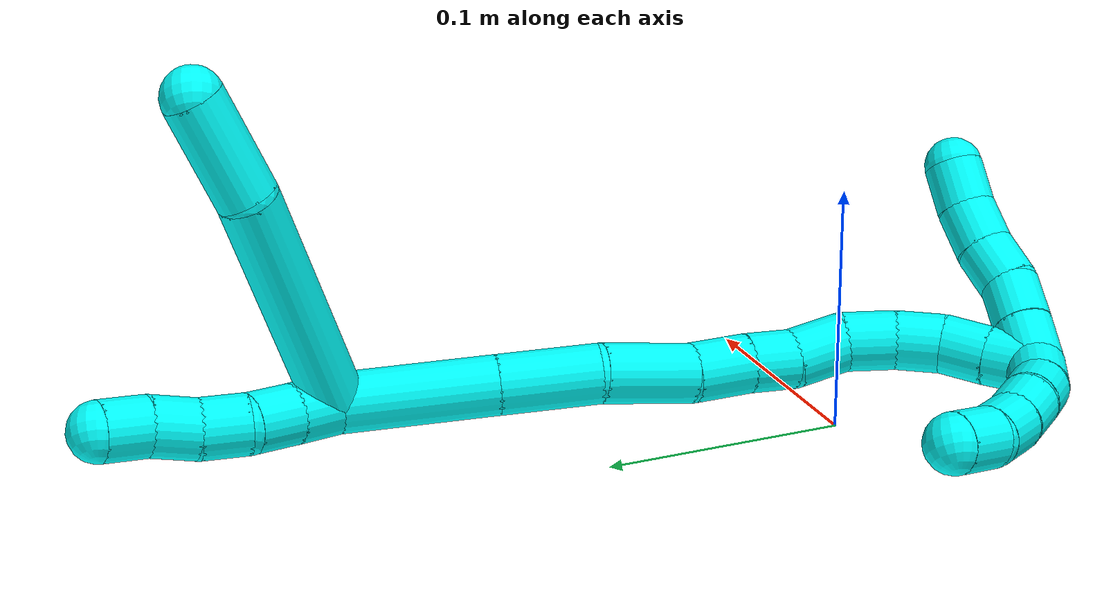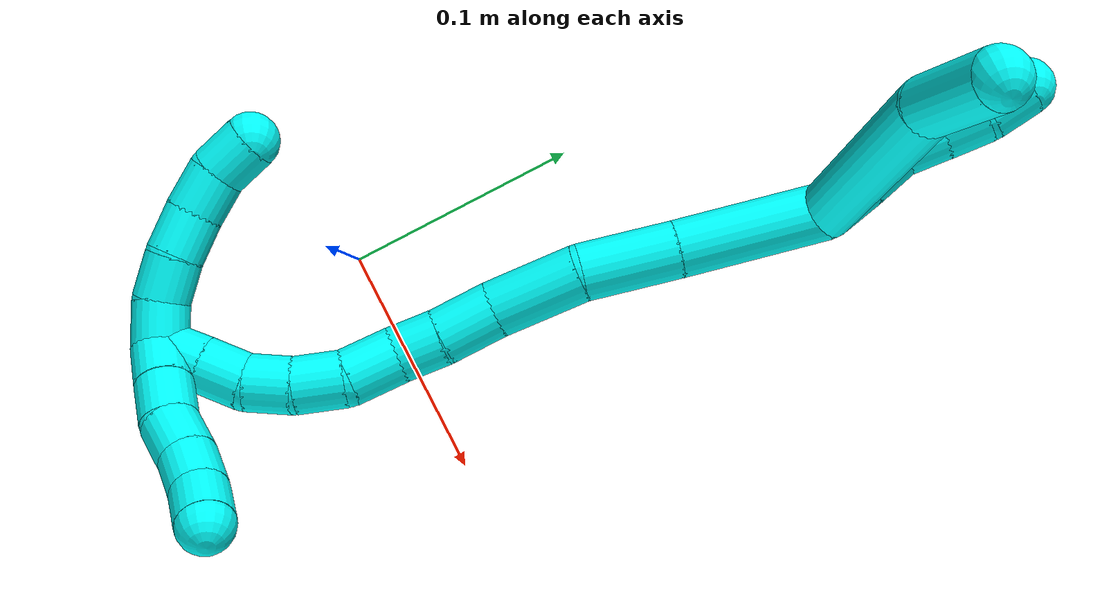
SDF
<sdf version="1.7">
 <world name="default">
  <model name="3">
   <static>0</static>
   <link name="3">
    <collision name="collision-cylinder-e_1_2_8">
     <pose>-0.043387 0.015925 0.025492 -0.558395 -0.964931 0.298076</pose>
     <geometry><cylinder><radius>0.0125</radius><length>0.105562</length></cylinder></geometry>
     <surface>
      <friction><ode><mu>1.16</mu><mu2>1.16</mu2><slip1>0</slip1><slip2>0</slip2></ode></friction>
      <contact><ode><kp>1e+06</kp><kd>1</kd><max_vel>0</max_vel><min_depth>0.001</min_depth></ode></contact>
     </surface>
    </collision>
    <visual name="visual-cylinder-e_1_2_8">
     <pose>-0.043387 0.015925 0.025492 -0.558395 -0.964931 0.298076</pose>
     <geometry><cylinder><radius>0.0125</radius><length>0.105562</length></cylinder></geometry>
     <material><ambient>0.003922 1 0.996078 1</ambient></material>
    </visual>
    <collision name="collision-cylinder-e_2_8_6">
     <pose>-0.101193 0.041055 0.065162 -0.575829 -0.706244 0.217438</pose>
     <geometry><cylinder><radius>0.0125</radius><length>0.044438</length></cylinder></geometry>
     <surface>
      <friction><ode><mu>1.16</mu><mu2>1.16</mu2><slip1>0</slip1><slip2>0</slip2></ode></friction>
      <contact><ode><kp>1e+06</kp><kd>1</kd><max_vel>0</max_vel><min_depth>0.001</min_depth></ode></contact>
     </surface>
    </collision>
    <visual name="visual-cylinder-e_2_8_6">
     <pose>-0.101193 0.041055 0.065162 -0.575829 -0.706244 0.217438</pose>
     <geometry><cylinder><radius>0.0125</radius><length>0.044438</length></cylinder></geometry>
     <material><ambient>0.003922 1 0.996078 1</ambient></material>
    </visual>
    <collision name="collision-cylinder-e_1_2_9">
     <pose>-0.003174 0.009032 -0.002891 -1.88061 -0.322951 0.43917</pose>
     <geometry><cylinder><radius>0.0125</radius><length>0.02</length></cylinder></geometry>
     <surface>
      <friction><ode><mu>1.16</mu><mu2>1.16</mu2><slip1>0</slip1><slip2>0</slip2></ode></friction>
      <contact><ode><kp>1e+06</kp><kd>1</kd><max_vel>0</max_vel><min_depth>0.001</min_depth></ode></contact>
     </surface>
    </collision>
    <visual name="visual-cylinder-e_1_2_9">
     <pose>-0.003174 0.009032 -0.002891 -1.88061 -0.322951 0.43917</pose>
     <geometry><cylinder><radius>0.0125</radius><length>0.02</length></cylinder></geometry>
     <material><ambient>0.003922 1 0.996078 1</ambient></material>
    </visual>
    <collision name="collision-cylinder-e_2_9_10">
     <pose>-0.010083 0.026882 -0.008659 -1.88606 -0.382804 0.52186</pose>
     <geometry><cylinder><radius>0.0125</radius><length>0.02</length></cylinder></geometry>
     <surface>
      <friction><ode><mu>1.16</mu><mu2>1.16</mu2><slip1>0</slip1><slip2>0</slip2></ode></friction>
      <contact><ode><kp>1e+06</kp><kd>1</kd><max_vel>0</max_vel><min_depth>0.001</min_depth></ode></contact>
     </surface>
    </collision>
    <visual name="visual-cylinder-e_2_9_10">
     <pose>-0.010083 0.026882 -0.008659 -1.88606 -0.382804 0.52186</pose>
     <geometry><cylinder><radius>0.0125</radius><length>0.02</length></cylinder></geometry>
     <material><ambient>0.003922 1 0.996078 1</ambient></material>
    </visual>
    <collision name="collision-cylinder-e_3_10_11">
     <pose>-0.014996 0.045597 -0.012364 -1.65439 -0.118092 0.128374</pose>
     <geometry><cylinder><radius>0.0125</radius><length>0.02</length></cylinder></geometry>
     <surface>
      <friction><ode><mu>1.16</mu><mu2>1.16</mu2><slip1>0</slip1><slip2>0</slip2></ode></friction>
      <contact><ode><kp>1e+06</kp><kd>1</kd><max_vel>0</max_vel><min_depth>0.001</min_depth></ode></contact>
     </surface>
    </collision>
    <visual name="visual-cylinder-e_3_10_11">
     <pose>-0.014996 0.045597 -0.012364 -1.65439 -0.118092 0.128374</pose>
     <geometry><cylinder><radius>0.0125</radius><length>0.02</length></cylinder></geometry>
     <material><ambient>0.003922 1 0.996078 1</ambient></material>
    </visual>
    <collision name="collision-cylinder-e_4_11_12">
     <pose>-0.018669 0.065165 -0.012732 -1.5231 -0.252164 0.240529</pose>
     <geometry><cylinder><radius>0.0125</radius><length>0.02</length></cylinder></geometry>
     <surface>
      <friction><ode><mu>1.16</mu><mu2>1.16</mu2><slip1>0</slip1><slip2>0</slip2></ode></friction>
      <contact><ode><kp>1e+06</kp><kd>1</kd><max_vel>0</max_vel><min_depth>0.001</min_depth></ode></contact>
     </surface>
    </collision>
    <visual name="visual-cylinder-e_4_11_12">
     <pose>-0.018669 0.065165 -0.012732 -1.5231 -0.252164 0.240529</pose>
     <geometry><cylinder><radius>0.0125</radius><length>0.02</length></cylinder></geometry>
     <material><ambient>0.003922 1 0.996078 1</ambient></material>
    </visual>
    <collision name="collision-cylinder-e_5_12_5">
     <pose>-0.024213 0.084218 -0.013918 -1.74474 -0.309803 0.367764</pose>
     <geometry><cylinder><radius>0.0125</radius><length>0.02</length></cylinder></geometry>
     <surface>
      <friction><ode><mu>1.16</mu><mu2>1.16</mu2><slip1>0</slip1><slip2>0</slip2></ode></friction>
      <contact><ode><kp>1e+06</kp><kd>1</kd><max_vel>0</max_vel><min_depth>0.001</min_depth></ode></contact>
     </surface>
    </collision>
    <visual name="visual-cylinder-e_5_12_5">
     <pose>-0.024213 0.084218 -0.013918 -1.74474 -0.309803 0.367764</pose>
     <geometry><cylinder><radius>0.0125</radius><length>0.02</length></cylinder></geometry>
     <material><ambient>0.003922 1 0.996078 1</ambient></material>
    </visual>
    <collision name="collision-cylinder-e_1_2_13">
     <pose>-0.000706 -0.032795 0.001213 1.53383 -0.021504 -0.020724</pose>
     <geometry><cylinder><radius>0.0125</radius><length>0.06565</length></cylinder></geometry>
     <surface>
      <friction><ode><mu>1.16</mu><mu2>1.16</mu2><slip1>0</slip1><slip2>0</slip2></ode></friction>
      <contact><ode><kp>1e+06</kp><kd>1</kd><max_vel>0</max_vel><min_depth>0.001</min_depth></ode></contact>
     </surface>
    </collision>
    <visual name="visual-cylinder-e_1_2_13">
     <pose>-0.000706 -0.032795 0.001213 1.53383 -0.021504 -0.020724</pose>
     <geometry><cylinder><radius>0.0125</radius><length>0.06565</length></cylinder></geometry>
     <material><ambient>0.003922 1 0.996078 1</ambient></material>
    </visual>
    <collision name="collision-cylinder-e_2_13_14">
     <pose>-0.002135 -0.086647 0.003041 1.54155 -0.034347 -0.033357</pose>
     <geometry><cylinder><radius>0.0125</radius><length>0.042157</length></cylinder></geometry>
     <surface>
      <friction><ode><mu>1.16</mu><mu2>1.16</mu2><slip1>0</slip1><slip2>0</slip2></ode></friction>
      <contact><ode><kp>1e+06</kp><kd>1</kd><max_vel>0</max_vel><min_depth>0.001</min_depth></ode></contact>
     </surface>
    </collision>
    <visual name="visual-cylinder-e_2_13_14">
     <pose>-0.002135 -0.086647 0.003041 1.54155 -0.034347 -0.033357</pose>
     <geometry><cylinder><radius>0.0125</radius><length>0.042157</length></cylinder></geometry>
     <material><ambient>0.003922 1 0.996078 1</ambient></material>
    </visual>
    <collision name="collision-cylinder-e_3_14_15">
     <pose>0.00122 -0.127247 0.003923 1.5572 0.205763 0.203004</pose>
     <geometry><cylinder><radius>0.0125</radius><length>0.039932</length></cylinder></geometry>
     <surface>
      <friction><ode><mu>1.16</mu><mu2>1.16</mu2><slip1>0</slip1><slip2>0</slip2></ode></friction>
      <contact><ode><kp>1e+06</kp><kd>1</kd><max_vel>0</max_vel><min_depth>0.001</min_depth></ode></contact>
     </surface>
    </collision>
    <visual name="visual-cylinder-e_3_14_15">
     <pose>0.00122 -0.127247 0.003923 1.5572 0.205763 0.203004</pose>
     <geometry><cylinder><radius>0.0125</radius><length>0.039932</length></cylinder></geometry>
     <material><ambient>0.003922 1 0.996078 1</ambient></material>
    </visual>
    <collision name="collision-cylinder-e_4_15_16">
     <pose>0.007371 -0.159285 0.006297 1.40363 0.162089 0.137115</pose>
     <geometry><cylinder><radius>0.0125</radius><length>0.025679</length></cylinder></geometry>
     <surface>
      <friction><ode><mu>1.16</mu><mu2>1.16</mu2><slip1>0</slip1><slip2>0</slip2></ode></friction>
      <contact><ode><kp>1e+06</kp><kd>1</kd><max_vel>0</max_vel><min_depth>0.001</min_depth></ode></contact>
     </surface>
    </collision>
    <visual name="visual-cylinder-e_4_15_16">
     <pose>0.007371 -0.159285 0.006297 1.40363 0.162089 0.137115</pose>
     <geometry><cylinder><radius>0.0125</radius><length>0.025679</length></cylinder></geometry>
     <material><ambient>0.003922 1 0.996078 1</ambient></material>
    </visual>
    <collision name="collision-cylinder-e_5_16_17">
     <pose>0.01067 -0.181844 0.009166 1.49536 0.120894 0.11212</pose>
     <geometry><cylinder><radius>0.0125</radius><length>0.020334</length></cylinder></geometry>
     <surface>
      <friction><ode><mu>1.16</mu><mu2>1.16</mu2><slip1>0</slip1><slip2>0</slip2></ode></friction>
      <contact><ode><kp>1e+06</kp><kd>1</kd><max_vel>0</max_vel><min_depth>0.001</min_depth></ode></contact>
     </surface>
    </collision>
    <visual name="visual-cylinder-e_5_16_17">
     <pose>0.01067 -0.181844 0.009166 1.49536 0.120894 0.11212</pose>
     <geometry><cylinder><radius>0.0125</radius><length>0.020334</length></cylinder></geometry>
     <material><ambient>0.003922 1 0.996078 1</ambient></material>
    </visual>
    <collision name="collision-cylinder-e_6_17_18">
     <pose>0.012027 -0.203291 0.013024 1.30518 0.011157 0.008527</pose>
     <geometry><cylinder><radius>0.0125</radius><length>0.023595</length></cylinder></geometry>
     <surface>
      <friction><ode><mu>1.16</mu><mu2>1.16</mu2><slip1>0</slip1><slip2>0</slip2></ode></friction>
      <contact><ode><kp>1e+06</kp><kd>1</kd><max_vel>0</max_vel><min_depth>0.001</min_depth></ode></contact>
     </surface>
    </collision>
    <visual name="visual-cylinder-e_6_17_18">
     <pose>0.012027 -0.203291 0.013024 1.30518 0.011157 0.008527</pose>
     <geometry><cylinder><radius>0.0125</radius><length>0.023595</length></cylinder></geometry>
     <material><ambient>0.003922 1 0.996078 1</ambient></material>
    </visual>
    <collision name="collision-cylinder-e_7_18_19">
     <pose>0.011249 -0.225743 0.015359 1.6395 -0.081852 -0.08767</pose>
     <geometry><cylinder><radius>0.0125</radius><length>0.022266</length></cylinder></geometry>
     <surface>
      <friction><ode><mu>1.16</mu><mu2>1.16</mu2><slip1>0</slip1><slip2>0</slip2></ode></friction>
      <contact><ode><kp>1e+06</kp><kd>1</kd><max_vel>0</max_vel><min_depth>0.001</min_depth></ode></contact>
     </surface>
    </collision>
    <visual name="visual-cylinder-e_7_18_19">
     <pose>0.011249 -0.225743 0.015359 1.6395 -0.081852 -0.08767</pose>
     <geometry><cylinder><radius>0.0125</radius><length>0.022266</length></cylinder></geometry>
     <material><ambient>0.003922 1 0.996078 1</ambient></material>
    </visual>
    <collision name="collision-cylinder-e_8_19_20">
     <pose>0.008437 -0.246442 0.012158 1.81886 -0.189167 -0.242582</pose>
     <geometry><cylinder><radius>0.0125</radius><length>0.020228</length></cylinder></geometry>
     <surface>
      <friction><ode><mu>1.16</mu><mu2>1.16</mu2><slip1>0</slip1><slip2>0</slip2></ode></friction>
      <contact><ode><kp>1e+06</kp><kd>1</kd><max_vel>0</max_vel><min_depth>0.001</min_depth></ode></contact>
     </surface>
    </collision>
    <visual name="visual-cylinder-e_8_19_20">
     <pose>0.008437 -0.246442 0.012158 1.81886 -0.189167 -0.242582</pose>
     <geometry><cylinder><radius>0.0125</radius><length>0.020228</length></cylinder></geometry>
     <material><ambient>0.003922 1 0.996078 1</ambient></material>
    </visual>
    <collision name="collision-cylinder-e_9_20_21">
     <pose>0.003128 -0.264206 0.004882 2.10732 -0.345574 -0.595461</pose>
     <geometry><cylinder><radius>0.0125</radius><length>0.020119</length></cylinder></geometry>
     <surface>
      <friction><ode><mu>1.16</mu><mu2>1.16</mu2><slip1>0</slip1><slip2>0</slip2></ode></friction>
      <contact><ode><kp>1e+06</kp><kd>1</kd><max_vel>0</max_vel><min_depth>0.001</min_depth></ode></contact>
     </surface>
    </collision>
    <visual name="visual-cylinder-e_9_20_21">
     <pose>0.003128 -0.264206 0.004882 2.10732 -0.345574 -0.595461</pose>
     <geometry><cylinder><radius>0.0125</radius><length>0.020119</length></cylinder></geometry>
     <material><ambient>0.003922 1 0.996078 1</ambient></material>
    </visual>
    <collision name="collision-cylinder-e_10_21_1">
     <pose>-0.003933 -0.280574 -0.004348 2.06084 -0.37313 -0.609651</pose>
     <geometry><cylinder><radius>0.0125</radius><length>0.02004</length></cylinder></geometry>
     <surface>
      <friction><ode><mu>1.16</mu><mu2>1.16</mu2><slip1>0</slip1><slip2>0</slip2></ode></friction>
      <contact><ode><kp>1e+06</kp><kd>1</kd><max_vel>0</max_vel><min_depth>0.001</min_depth></ode></contact>
     </surface>
    </collision>
    <visual name="visual-cylinder-e_10_21_1">
     <pose>-0.003933 -0.280574 -0.004348 2.06084 -0.37313 -0.609651</pose>
     <geometry><cylinder><radius>0.0125</radius><length>0.02004</length></cylinder></geometry>
     <material><ambient>0.003922 1 0.996078 1</ambient></material>
    </visual>
    <collision name="collision-cylinder-e_1_1_22">
     <pose>-0.013959 -0.286381 -0.016054 -2.82136 -0.691017 2.29809</pose>
     <geometry><cylinder><radius>0.0125</radius><length>0.02</length></cylinder></geometry>
     <surface>
      <friction><ode><mu>1.16</mu><mu2>1.16</mu2><slip1>0</slip1><slip2>0</slip2></ode></friction>
      <contact><ode><kp>1e+06</kp><kd>1</kd><max_vel>0</max_vel><min_depth>0.001</min_depth></ode></contact>
     </surface>
    </collision>
    <visual name="visual-cylinder-e_1_1_22">
     <pose>-0.013959 -0.286381 -0.016054 -2.82136 -0.691017 2.29809</pose>
     <geometry><cylinder><radius>0.0125</radius><length>0.02</length></cylinder></geometry>
     <material><ambient>0.003922 1 0.996078 1</ambient></material>
    </visual>
    <collision name="collision-cylinder-e_2_22_23">
     <pose>-0.026912 -0.278807 -0.028864 -2.3889 -0.718122 1.51928</pose>
     <geometry><cylinder><radius>0.0125</radius><length>0.02</length></cylinder></geometry>
     <surface>
      <friction><ode><mu>1.16</mu><mu2>1.16</mu2><slip1>0</slip1><slip2>0</slip2></ode></friction>
      <contact><ode><kp>1e+06</kp><kd>1</kd><max_vel>0</max_vel><min_depth>0.001</min_depth></ode></contact>
     </surface>
    </collision>
    <visual name="visual-cylinder-e_2_22_23">
     <pose>-0.026912 -0.278807 -0.028864 -2.3889 -0.718122 1.51928</pose>
     <geometry><cylinder><radius>0.0125</radius><length>0.02</length></cylinder></geometry>
     <material><ambient>0.003922 1 0.996078 1</ambient></material>
    </visual>
    <collision name="collision-cylinder-e_3_23_24">
     <pose>-0.038731 -0.267567 -0.040313 -2.34468 -0.551462 1.18351</pose>
     <geometry><cylinder><radius>0.0125</radius><length>0.02</length></cylinder></geometry>
     <surface>
      <friction><ode><mu>1.16</mu><mu2>1.16</mu2><slip1>0</slip1><slip2>0</slip2></ode></friction>
      <contact><ode><kp>1e+06</kp><kd>1</kd><max_vel>0</max_vel><min_depth>0.001</min_depth></ode></contact>
     </surface>
    </collision>
    <visual name="visual-cylinder-e_3_23_24">
     <pose>-0.038731 -0.267567 -0.040313 -2.34468 -0.551462 1.18351</pose>
     <geometry><cylinder><radius>0.0125</radius><length>0.02</length></cylinder></geometry>
     <material><ambient>0.003922 1 0.996078 1</ambient></material>
    </visual>
    <collision name="collision-cylinder-e_4_24_25">
     <pose>-0.049392 -0.254536 -0.051004 -2.1698 -0.573103 1.01783</pose>
     <geometry><cylinder><radius>0.0125</radius><length>0.02</length></cylinder></geometry>
     <surface>
      <friction><ode><mu>1.16</mu><mu2>1.16</mu2><slip1>0</slip1><slip2>0</slip2></ode></friction>
      <contact><ode><kp>1e+06</kp><kd>1</kd><max_vel>0</max_vel><min_depth>0.001</min_depth></ode></contact>
     </surface>
    </collision>
    <visual name="visual-cylinder-e_4_24_25">
     <pose>-0.049392 -0.254536 -0.051004 -2.1698 -0.573103 1.01783</pose>
     <geometry><cylinder><radius>0.0125</radius><length>0.02</length></cylinder></geometry>
     <material><ambient>0.003922 1 0.996078 1</ambient></material>
    </visual>
    <collision name="collision-cylinder-e_5_25_4">
     <pose>-0.059063 -0.238851 -0.058079 -1.83204 -0.438792 0.565314</pose>
     <geometry><cylinder><radius>0.0125</radius><length>0.02</length></cylinder></geometry>
     <surface>
      <friction><ode><mu>1.16</mu><mu2>1.16</mu2><slip1>0</slip1><slip2>0</slip2></ode></friction>
      <contact><ode><kp>1e+06</kp><kd>1</kd><max_vel>0</max_vel><min_depth>0.001</min_depth></ode></contact>
     </surface>
    </collision>
    <visual name="visual-cylinder-e_5_25_4">
     <pose>-0.059063 -0.238851 -0.058079 -1.83204 -0.438792 0.565314</pose>
     <geometry><cylinder><radius>0.0125</radius><length>0.02</length></cylinder></geometry>
     <material><ambient>0.003922 1 0.996078 1</ambient></material>
    </visual>
    <collision name="collision-cylinder-e_1_1_26">
     <pose>-0.006344 -0.288415 0.001175 -0.039463 0.124488 -0.00246</pose>
     <geometry><cylinder><radius>0.0125</radius><length>0.02</length></cylinder></geometry>
     <surface>
      <friction><ode><mu>1.16</mu><mu2>1.16</mu2><slip1>0</slip1><slip2>0</slip2></ode></friction>
      <contact><ode><kp>1e+06</kp><kd>1</kd><max_vel>0</max_vel><min_depth>0.001</min_depth></ode></contact>
     </surface>
    </collision>
    <visual name="visual-cylinder-e_1_1_26">
     <pose>-0.006344 -0.288415 0.001175 -0.039463 0.124488 -0.00246</pose>
     <geometry><cylinder><radius>0.0125</radius><length>0.02</length></cylinder></geometry>
     <material><ambient>0.003922 1 0.996078 1</ambient></material>
    </visual>
    <collision name="collision-cylinder-e_2_26_27">
     <pose>-0.003556 -0.287521 0.020957 -0.050838 0.155189 -0.003954</pose>
     <geometry><cylinder><radius>0.0125</radius><length>0.02</length></cylinder></geometry>
     <surface>
      <friction><ode><mu>1.16</mu><mu2>1.16</mu2><slip1>0</slip1><slip2>0</slip2></ode></friction>
      <contact><ode><kp>1e+06</kp><kd>1</kd><max_vel>0</max_vel><min_depth>0.001</min_depth></ode></contact>
     </surface>
    </collision>
    <visual name="visual-cylinder-e_2_26_27">
     <pose>-0.003556 -0.287521 0.020957 -0.050838 0.155189 -0.003954</pose>
     <geometry><cylinder><radius>0.0125</radius><length>0.02</length></cylinder></geometry>
     <material><ambient>0.003922 1 0.996078 1</ambient></material>
    </visual>
    <collision name="collision-cylinder-e_3_27_28">
     <pose>-0.000405 -0.283857 0.040174 -0.326184 0.16124 -0.026589</pose>
     <geometry><cylinder><radius>0.0125</radius><length>0.02</length></cylinder></geometry>
     <surface>
      <friction><ode><mu>1.16</mu><mu2>1.16</mu2><slip1>0</slip1><slip2>0</slip2></ode></friction>
      <contact><ode><kp>1e+06</kp><kd>1</kd><max_vel>0</max_vel><min_depth>0.001</min_depth></ode></contact>
     </surface>
    </collision>
    <visual name="visual-cylinder-e_3_27_28">
     <pose>-0.000405 -0.283857 0.040174 -0.326184 0.16124 -0.026589</pose>
     <geometry><cylinder><radius>0.0125</radius><length>0.02</length></cylinder></geometry>
     <material><ambient>0.003922 1 0.996078 1</ambient></material>
    </visual>
    <collision name="collision-cylinder-e_4_28_29">
     <pose>0.001444 -0.278543 0.059287 -0.216858 0.024431 -0.00266</pose>
     <geometry><cylinder><radius>0.0125</radius><length>0.02</length></cylinder></geometry>
     <surface>
      <friction><ode><mu>1.16</mu><mu2>1.16</mu2><slip1>0</slip1><slip2>0</slip2></ode></friction>
      <contact><ode><kp>1e+06</kp><kd>1</kd><max_vel>0</max_vel><min_depth>0.001</min_depth></ode></contact>
     </surface>
    </collision>
    <visual name="visual-cylinder-e_4_28_29">
     <pose>0.001444 -0.278543 0.059287 -0.216858 0.024431 -0.00266</pose>
     <geometry><cylinder><radius>0.0125</radius><length>0.02</length></cylinder></geometry>
     <material><ambient>0.003922 1 0.996078 1</ambient></material>
    </visual>
    <collision name="collision-cylinder-e_5_29_3">
     <pose>0.000552 -0.275047 0.078893 -0.135817 -0.113928 0.007757</pose>
     <geometry><cylinder><radius>0.0125</radius><length>0.02</length></cylinder></geometry>
     <surface>
      <friction><ode><mu>1.16</mu><mu2>1.16</mu2><slip1>0</slip1><slip2>0</slip2></ode></friction>
      <contact><ode><kp>1e+06</kp><kd>1</kd><max_vel>0</max_vel><min_depth>0.001</min_depth></ode></contact>
     </surface>
    </collision>
    <visual name="visual-cylinder-e_5_29_3">
     <pose>0.000552 -0.275047 0.078893 -0.135817 -0.113928 0.007757</pose>
     <geometry><cylinder><radius>0.0125</radius><length>0.02</length></cylinder></geometry>
     <material><ambient>0.003922 1 0.996078 1</ambient></material>
    </visual>
    <collision name="collision-sphere-3">
     <pose>-0.000585 -0.273701 0.088737 0 -0 0</pose>
     <geometry><sphere><radius>0.0125</radius></sphere></geometry>
     <surface>
      <friction><ode><mu>1.16</mu><mu2>1.16</mu2><slip1>0</slip1><slip2>0</slip2></ode></friction>
      <contact><ode><kp>1e+06</kp><kd>1</kd><max_vel>0</max_vel><min_depth>0.001</min_depth></ode></contact>
     </surface>
    </collision>
    <visual name="visual-sphere-3">
     <pose>-0.000585 -0.273701 0.088737 0 -0 0</pose>
     <geometry><sphere><radius>0.0125</radius></sphere></geometry>
     <material><ambient>0.003922 1 0.996078 1</ambient></material>
    </visual>
    <collision name="collision-sphere-29">
     <pose>0.001689 -0.276392 0.06905 0 -0 0</pose>
     <geometry><sphere><radius>0.0125</radius></sphere></geometry>
     <surface>
      <friction><ode><mu>1.16</mu><mu2>1.16</mu2><slip1>0</slip1><slip2>0</slip2></ode></friction>
      <contact><ode><kp>1e+06</kp><kd>1</kd><max_vel>0</max_vel><min_depth>0.001</min_depth></ode></contact>
     </surface>
    </collision>
    <visual name="visual-sphere-29">
     <pose>0.001689 -0.276392 0.06905 0 -0 0</pose>
     <geometry><sphere><radius>0.0125</radius></sphere></geometry>
     <material><ambient>0.003922 1 0.996078 1</ambient></material>
    </visual>
    <collision name="collision-sphere-28">
     <pose>0.0012 -0.280694 0.049524 0 -0 0</pose>
     <geometry><sphere><radius>0.0125</radius></sphere></geometry>
     <surface>
      <friction><ode><mu>1.16</mu><mu2>1.16</mu2><slip1>0</slip1><slip2>0</slip2></ode></friction>
      <contact><ode><kp>1e+06</kp><kd>1</kd><max_vel>0</max_vel><min_depth>0.001</min_depth></ode></contact>
     </surface>
    </collision>
    <visual name="visual-sphere-28">
     <pose>0.0012 -0.280694 0.049524 0 -0 0</pose>
     <geometry><sphere><radius>0.0125</radius></sphere></geometry>
     <material><ambient>0.003922 1 0.996078 1</ambient></material>
    </visual>
    <collision name="collision-sphere-27">
     <pose>-0.002011 -0.287019 0.030824 0 -0 0</pose>
     <geometry><sphere><radius>0.0125</radius></sphere></geometry>
     <surface>
      <friction><ode><mu>1.16</mu><mu2>1.16</mu2><slip1>0</slip1><slip2>0</slip2></ode></friction>
      <contact><ode><kp>1e+06</kp><kd>1</kd><max_vel>0</max_vel><min_depth>0.001</min_depth></ode></contact>
     </surface>
    </collision>
    <visual name="visual-sphere-27">
     <pose>-0.002011 -0.287019 0.030824 0 -0 0</pose>
     <geometry><sphere><radius>0.0125</radius></sphere></geometry>
     <material><ambient>0.003922 1 0.996078 1</ambient></material>
    </visual>
    <collision name="collision-sphere-26">
     <pose>-0.005102 -0.288023 0.01109 0 -0 0</pose>
     <geometry><sphere><radius>0.0125</radius></sphere></geometry>
     <surface>
      <friction><ode><mu>1.16</mu><mu2>1.16</mu2><slip1>0</slip1><slip2>0</slip2></ode></friction>
      <contact><ode><kp>1e+06</kp><kd>1</kd><max_vel>0</max_vel><min_depth>0.001</min_depth></ode></contact>
     </surface>
    </collision>
    <visual name="visual-sphere-26">
     <pose>-0.005102 -0.288023 0.01109 0 -0 0</pose>
     <geometry><sphere><radius>0.0125</radius></sphere></geometry>
     <material><ambient>0.003922 1 0.996078 1</ambient></material>
    </visual>
    <collision name="collision-sphere-4">
     <pose>-0.063312 -0.230106 -0.060418 0 -0 0</pose>
     <geometry><sphere><radius>0.0125</radius></sphere></geometry>
     <surface>
      <friction><ode><mu>1.16</mu><mu2>1.16</mu2><slip1>0</slip1><slip2>0</slip2></ode></friction>
      <contact><ode><kp>1e+06</kp><kd>1</kd><max_vel>0</max_vel><min_depth>0.001</min_depth></ode></contact>
     </surface>
    </collision>
    <visual name="visual-sphere-4">
     <pose>-0.063312 -0.230106 -0.060418 0 -0 0</pose>
     <geometry><sphere><radius>0.0125</radius></sphere></geometry>
     <material><ambient>0.003922 1 0.996078 1</ambient></material>
    </visual>
    <collision name="collision-sphere-25">
     <pose>-0.054815 -0.247597 -0.055741 0 -0 0</pose>
     <geometry><sphere><radius>0.0125</radius></sphere></geometry>
     <surface>
      <friction><ode><mu>1.16</mu><mu2>1.16</mu2><slip1>0</slip1><slip2>0</slip2></ode></friction>
      <contact><ode><kp>1e+06</kp><kd>1</kd><max_vel>0</max_vel><min_depth>0.001</min_depth></ode></contact>
     </surface>
    </collision>
    <visual name="visual-sphere-25">
     <pose>-0.054815 -0.247597 -0.055741 0 -0 0</pose>
     <geometry><sphere><radius>0.0125</radius></sphere></geometry>
     <material><ambient>0.003922 1 0.996078 1</ambient></material>
    </visual>
    <collision name="collision-sphere-24">
     <pose>-0.04397 -0.261476 -0.046267 0 -0 0</pose>
     <geometry><sphere><radius>0.0125</radius></sphere></geometry>
     <surface>
      <friction><ode><mu>1.16</mu><mu2>1.16</mu2><slip1>0</slip1><slip2>0</slip2></ode></friction>
      <contact><ode><kp>1e+06</kp><kd>1</kd><max_vel>0</max_vel><min_depth>0.001</min_depth></ode></contact>
     </surface>
    </collision>
    <visual name="visual-sphere-24">
     <pose>-0.04397 -0.261476 -0.046267 0 -0 0</pose>
     <geometry><sphere><radius>0.0125</radius></sphere></geometry>
     <material><ambient>0.003922 1 0.996078 1</ambient></material>
    </visual>
    <collision name="collision-sphere-23">
     <pose>-0.033491 -0.273659 -0.03436 0 -0 0</pose>
     <geometry><sphere><radius>0.0125</radius></sphere></geometry>
     <surface>
      <friction><ode><mu>1.16</mu><mu2>1.16</mu2><slip1>0</slip1><slip2>0</slip2></ode></friction>
      <contact><ode><kp>1e+06</kp><kd>1</kd><max_vel>0</max_vel><min_depth>0.001</min_depth></ode></contact>
     </surface>
    </collision>
    <visual name="visual-sphere-23">
     <pose>-0.033491 -0.273659 -0.03436 0 -0 0</pose>
     <geometry><sphere><radius>0.0125</radius></sphere></geometry>
     <material><ambient>0.003922 1 0.996078 1</ambient></material>
    </visual>
    <collision name="collision-sphere-22">
     <pose>-0.020332 -0.283955 -0.023368 0 -0 0</pose>
     <geometry><sphere><radius>0.0125</radius></sphere></geometry>
     <surface>
      <friction><ode><mu>1.16</mu><mu2>1.16</mu2><slip1>0</slip1><slip2>0</slip2></ode></friction>
      <contact><ode><kp>1e+06</kp><kd>1</kd><max_vel>0</max_vel><min_depth>0.001</min_depth></ode></contact>
     </surface>
    </collision>
    <visual name="visual-sphere-22">
     <pose>-0.020332 -0.283955 -0.023368 0 -0 0</pose>
     <geometry><sphere><radius>0.0125</radius></sphere></geometry>
     <material><ambient>0.003922 1 0.996078 1</ambient></material>
    </visual>
    <collision name="collision-sphere-1">
     <pose>-0.007585 -0.288806 -0.00874 0 -0 0</pose>
     <geometry><sphere><radius>0.0125</radius></sphere></geometry>
     <surface>
      <friction><ode><mu>1.16</mu><mu2>1.16</mu2><slip1>0</slip1><slip2>0</slip2></ode></friction>
      <contact><ode><kp>1e+06</kp><kd>1</kd><max_vel>0</max_vel><min_depth>0.001</min_depth></ode></contact>
     </surface>
    </collision>
    <visual name="visual-sphere-1">
     <pose>-0.007585 -0.288806 -0.00874 0 -0 0</pose>
     <geometry><sphere><radius>0.0125</radius></sphere></geometry>
     <material><ambient>0.003922 1 0.996078 1</ambient></material>
    </visual>
    <collision name="collision-sphere-21">
     <pose>-0.00028 -0.272341 4.4e-05 0 -0 0</pose>
     <geometry><sphere><radius>0.0125</radius></sphere></geometry>
     <surface>
      <friction><ode><mu>1.16</mu><mu2>1.16</mu2><slip1>0</slip1><slip2>0</slip2></ode></friction>
      <contact><ode><kp>1e+06</kp><kd>1</kd><max_vel>0</max_vel><min_depth>0.001</min_depth></ode></contact>
     </surface>
    </collision>
    <visual name="visual-sphere-21">
     <pose>-0.00028 -0.272341 4.4e-05 0 -0 0</pose>
     <geometry><sphere><radius>0.0125</radius></sphere></geometry>
     <material><ambient>0.003922 1 0.996078 1</ambient></material>
    </visual>
    <collision name="collision-sphere-11">
     <pose>-0.016174 0.055492 -0.013193 0 -0 0</pose>
     <geometry><sphere><radius>0.0125</radius></sphere></geometry>
     <surface>
      <friction><ode><mu>1.16</mu><mu2>1.16</mu2><slip1>0</slip1><slip2>0</slip2></ode></friction>
      <contact><ode><kp>1e+06</kp><kd>1</kd><max_vel>0</max_vel><min_depth>0.001</min_depth></ode></contact>
     </surface>
    </collision>
    <visual name="visual-sphere-11">
     <pose>-0.016174 0.055492 -0.013193 0 -0 0</pose>
     <geometry><sphere><radius>0.0125</radius></sphere></geometry>
     <material><ambient>0.003922 1 0.996078 1</ambient></material>
    </visual>
    <collision name="collision-sphere-10">
     <pose>-0.013818 0.035701 -0.011535 0 -0 0</pose>
     <geometry><sphere><radius>0.0125</radius></sphere></geometry>
     <surface>
      <friction><ode><mu>1.16</mu><mu2>1.16</mu2><slip1>0</slip1><slip2>0</slip2></ode></friction>
      <contact><ode><kp>1e+06</kp><kd>1</kd><max_vel>0</max_vel><min_depth>0.001</min_depth></ode></contact>
     </surface>
    </collision>
    <visual name="visual-sphere-10">
     <pose>-0.013818 0.035701 -0.011535 0 -0 0</pose>
     <geometry><sphere><radius>0.0125</radius></sphere></geometry>
     <material><ambient>0.003922 1 0.996078 1</ambient></material>
    </visual>
    <collision name="collision-sphere-6">
     <pose>-0.115612 0.05026 0.07934 0 -0 0</pose>
     <geometry><sphere><radius>0.0125</radius></sphere></geometry>
     <surface>
      <friction><ode><mu>1.16</mu><mu2>1.16</mu2><slip1>0</slip1><slip2>0</slip2></ode></friction>
      <contact><ode><kp>1e+06</kp><kd>1</kd><max_vel>0</max_vel><min_depth>0.001</min_depth></ode></contact>
     </surface>
    </collision>
    <visual name="visual-sphere-6">
     <pose>-0.115612 0.05026 0.07934 0 -0 0</pose>
     <geometry><sphere><radius>0.0125</radius></sphere></geometry>
     <material><ambient>0.003922 1 0.996078 1</ambient></material>
    </visual>
    <collision name="collision-sphere-9">
     <pose>-0.006347 0.018063 -0.005782 0 -0 0</pose>
     <geometry><sphere><radius>0.0125</radius></sphere></geometry>
     <surface>
      <friction><ode><mu>1.16</mu><mu2>1.16</mu2><slip1>0</slip1><slip2>0</slip2></ode></friction>
      <contact><ode><kp>1e+06</kp><kd>1</kd><max_vel>0</max_vel><min_depth>0.001</min_depth></ode></contact>
     </surface>
    </collision>
    <visual name="visual-sphere-9">
     <pose>-0.006347 0.018063 -0.005782 0 -0 0</pose>
     <geometry><sphere><radius>0.0125</radius></sphere></geometry>
     <material><ambient>0.003922 1 0.996078 1</ambient></material>
    </visual>
    <collision name="collision-sphere-2">
     <geometry><sphere><radius>0.0125</radius></sphere></geometry>
     <surface>
      <friction><ode><mu>1.16</mu><mu2>1.16</mu2><slip1>0</slip1><slip2>0</slip2></ode></friction>
      <contact><ode><kp>1e+06</kp><kd>1</kd><max_vel>0</max_vel><min_depth>0.001</min_depth></ode></contact>
     </surface>
    </collision>
    <visual name="visual-sphere-2">
     <geometry><sphere><radius>0.0125</radius></sphere></geometry>
     <material><ambient>0.003922 1 0.996078 1</ambient></material>
    </visual>
    <collision name="collision-sphere-19">
     <pose>0.010339 -0.236813 0.014597 0 -0 0</pose>
     <geometry><sphere><radius>0.0125</radius></sphere></geometry>
     <surface>
      <friction><ode><mu>1.16</mu><mu2>1.16</mu2><slip1>0</slip1><slip2>0</slip2></ode></friction>
      <contact><ode><kp>1e+06</kp><kd>1</kd><max_vel>0</max_vel><min_depth>0.001</min_depth></ode></contact>
     </surface>
    </collision>
    <visual name="visual-sphere-19">
     <pose>0.010339 -0.236813 0.014597 0 -0 0</pose>
     <geometry><sphere><radius>0.0125</radius></sphere></geometry>
     <material><ambient>0.003922 1 0.996078 1</ambient></material>
    </visual>
    <collision name="collision-sphere-8">
     <pose>-0.086773 0.03185 0.050984 0 -0 0</pose>
     <geometry><sphere><radius>0.0125</radius></sphere></geometry>
     <surface>
      <friction><ode><mu>1.16</mu><mu2>1.16</mu2><slip1>0</slip1><slip2>0</slip2></ode></friction>
      <contact><ode><kp>1e+06</kp><kd>1</kd><max_vel>0</max_vel><min_depth>0.001</min_depth></ode></contact>
     </surface>
    </collision>
    <visual name="visual-sphere-8">
     <pose>-0.086773 0.03185 0.050984 0 -0 0</pose>
     <geometry><sphere><radius>0.0125</radius></sphere></geometry>
     <material><ambient>0.003922 1 0.996078 1</ambient></material>
    </visual>
    <collision name="collision-sphere-12">
     <pose>-0.021164 0.074838 -0.01227 0 -0 0</pose>
     <geometry><sphere><radius>0.0125</radius></sphere></geometry>
     <surface>
      <friction><ode><mu>1.16</mu><mu2>1.16</mu2><slip1>0</slip1><slip2>0</slip2></ode></friction>
      <contact><ode><kp>1e+06</kp><kd>1</kd><max_vel>0</max_vel><min_depth>0.001</min_depth></ode></contact>
     </surface>
    </collision>
    <visual name="visual-sphere-12">
     <pose>-0.021164 0.074838 -0.01227 0 -0 0</pose>
     <geometry><sphere><radius>0.0125</radius></sphere></geometry>
     <material><ambient>0.003922 1 0.996078 1</ambient></material>
    </visual>
    <collision name="collision-sphere-5">
     <pose>-0.027262 0.093598 -0.015566 0 -0 0</pose>
     <geometry><sphere><radius>0.0125</radius></sphere></geometry>
     <surface>
      <friction><ode><mu>1.16</mu><mu2>1.16</mu2><slip1>0</slip1><slip2>0</slip2></ode></friction>
      <contact><ode><kp>1e+06</kp><kd>1</kd><max_vel>0</max_vel><min_depth>0.001</min_depth></ode></contact>
     </surface>
    </collision>
    <visual name="visual-sphere-5">
     <pose>-0.027262 0.093598 -0.015566 0 -0 0</pose>
     <geometry><sphere><radius>0.0125</radius></sphere></geometry>
     <material><ambient>0.003922 1 0.996078 1</ambient></material>
    </visual>
    <collision name="collision-sphere-13">
     <pose>-0.001412 -0.06559 0.002426 0 -0 0</pose>
     <geometry><sphere><radius>0.0125</radius></sphere></geometry>
     <surface>
      <friction><ode><mu>1.16</mu><mu2>1.16</mu2><slip1>0</slip1><slip2>0</slip2></ode></friction>
      <contact><ode><kp>1e+06</kp><kd>1</kd><max_vel>0</max_vel><min_depth>0.001</min_depth></ode></contact>
     </surface>
    </collision>
    <visual name="visual-sphere-13">
     <pose>-0.001412 -0.06559 0.002426 0 -0 0</pose>
     <geometry><sphere><radius>0.0125</radius></sphere></geometry>
     <material><ambient>0.003922 1 0.996078 1</ambient></material>
    </visual>
    <collision name="collision-sphere-14">
     <pose>-0.002859 -0.107704 0.003657 0 -0 0</pose>
     <geometry><sphere><radius>0.0125</radius></sphere></geometry>
     <surface>
      <friction><ode><mu>1.16</mu><mu2>1.16</mu2><slip1>0</slip1><slip2>0</slip2></ode></friction>
      <contact><ode><kp>1e+06</kp><kd>1</kd><max_vel>0</max_vel><min_depth>0.001</min_depth></ode></contact>
     </surface>
    </collision>
    <visual name="visual-sphere-14">
     <pose>-0.002859 -0.107704 0.003657 0 -0 0</pose>
     <geometry><sphere><radius>0.0125</radius></sphere></geometry>
     <material><ambient>0.003922 1 0.996078 1</ambient></material>
    </visual>
    <collision name="collision-sphere-15">
     <pose>0.005299 -0.14679 0.004189 0 -0 0</pose>
     <geometry><sphere><radius>0.0125</radius></sphere></geometry>
     <surface>
      <friction><ode><mu>1.16</mu><mu2>1.16</mu2><slip1>0</slip1><slip2>0</slip2></ode></friction>
      <contact><ode><kp>1e+06</kp><kd>1</kd><max_vel>0</max_vel><min_depth>0.001</min_depth></ode></contact>
     </surface>
    </collision>
    <visual name="visual-sphere-15">
     <pose>0.005299 -0.14679 0.004189 0 -0 0</pose>
     <geometry><sphere><radius>0.0125</radius></sphere></geometry>
     <material><ambient>0.003922 1 0.996078 1</ambient></material>
    </visual>
    <collision name="collision-sphere-16">
     <pose>0.009444 -0.171779 0.008406 0 -0 0</pose>
     <geometry><sphere><radius>0.0125</radius></sphere></geometry>
     <surface>
      <friction><ode><mu>1.16</mu><mu2>1.16</mu2><slip1>0</slip1><slip2>0</slip2></ode></friction>
      <contact><ode><kp>1e+06</kp><kd>1</kd><max_vel>0</max_vel><min_depth>0.001</min_depth></ode></contact>
     </surface>
    </collision>
    <visual name="visual-sphere-16">
     <pose>0.009444 -0.171779 0.008406 0 -0 0</pose>
     <geometry><sphere><radius>0.0125</radius></sphere></geometry>
     <material><ambient>0.003922 1 0.996078 1</ambient></material>
    </visual>
    <collision name="collision-sphere-17">
     <pose>0.011896 -0.191908 0.009927 0 -0 0</pose>
     <geometry><sphere><radius>0.0125</radius></sphere></geometry>
     <surface>
      <friction><ode><mu>1.16</mu><mu2>1.16</mu2><slip1>0</slip1><slip2>0</slip2></ode></friction>
      <contact><ode><kp>1e+06</kp><kd>1</kd><max_vel>0</max_vel><min_depth>0.001</min_depth></ode></contact>
     </surface>
    </collision>
    <visual name="visual-sphere-17">
     <pose>0.011896 -0.191908 0.009927 0 -0 0</pose>
     <geometry><sphere><radius>0.0125</radius></sphere></geometry>
     <material><ambient>0.003922 1 0.996078 1</ambient></material>
    </visual>
    <collision name="collision-sphere-18">
     <pose>0.012159 -0.214674 0.016121 0 -0 0</pose>
     <geometry><sphere><radius>0.0125</radius></sphere></geometry>
     <surface>
      <friction><ode><mu>1.16</mu><mu2>1.16</mu2><slip1>0</slip1><slip2>0</slip2></ode></friction>
      <contact><ode><kp>1e+06</kp><kd>1</kd><max_vel>0</max_vel><min_depth>0.001</min_depth></ode></contact>
     </surface>
    </collision>
    <visual name="visual-sphere-18">
     <pose>0.012159 -0.214674 0.016121 0 -0 0</pose>
     <geometry><sphere><radius>0.0125</radius></sphere></geometry>
     <material><ambient>0.003922 1 0.996078 1</ambient></material>
    </visual>
    <collision name="collision-sphere-20">
     <pose>0.006535 -0.256071 0.009719 0 -0 0</pose>
     <geometry><sphere><radius>0.0125</radius></sphere></geometry>
     <surface>
      <friction><ode><mu>1.16</mu><mu2>1.16</mu2><slip1>0</slip1><slip2>0</slip2></ode></friction>
      <contact><ode><kp>1e+06</kp><kd>1</kd><max_vel>0</max_vel><min_depth>0.001</min_depth></ode></contact>
     </surface>
    </collision>
    <visual name="visual-sphere-20">
     <pose>0.006535 -0.256071 0.009719 0 -0 0</pose>
     <geometry><sphere><radius>0.0125</radius></sphere></geometry>
     <material><ambient>0.003922 1 0.996078 1</ambient></material>
    </visual>
    <inertial>
     <pose>-0.017892 -0.121451 0.008424 0 -0 0</pose>
     <mass>0.75</mass>
     <inertia>
      <ixx>0.000138</ixx>
      <ixy>0</ixy>
      <ixz>0</ixz>
      <iyy>0.000133</iyy>
      <iyz>0</iyz>
      <izz>0.000109</izz>
     </inertia>
    </inertial>
   </link>
   <pose>0.074544 0.187128 0.012489 -0.004177 0.795553 -0.238781</pose>
  </model>
 </world>
</sdf>
